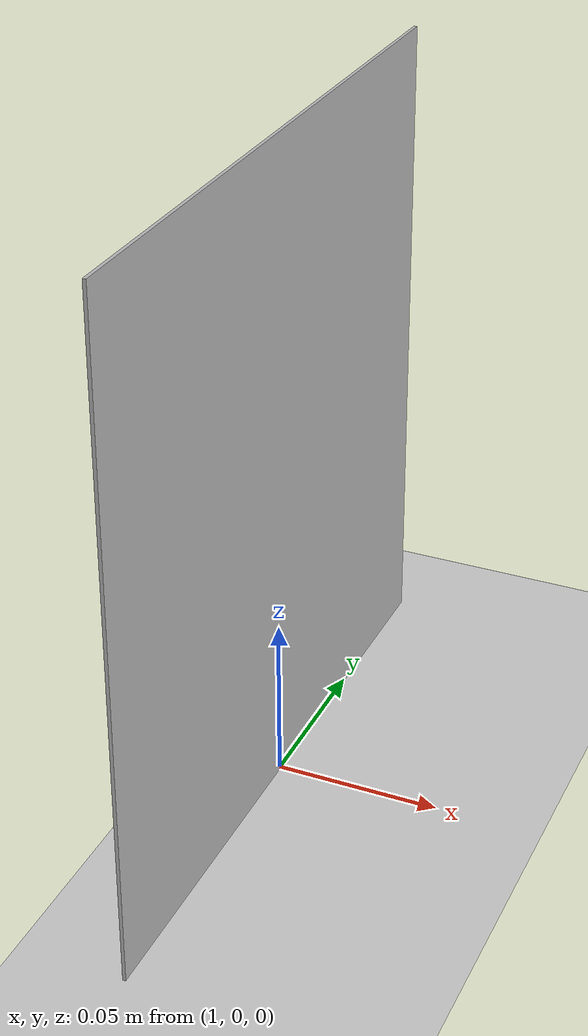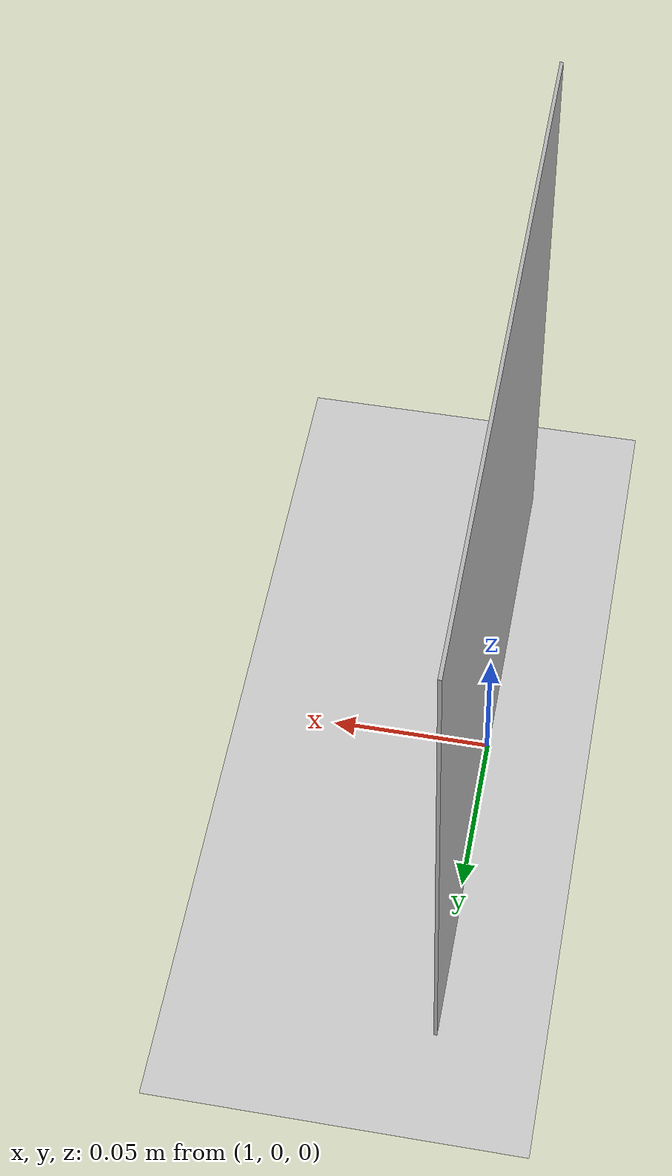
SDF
<?xml version="1.0"?>
<sdf version="1.9">
  <world name="aruco_demo">
    <include>
      <uri>https://fuel.gazebosim.org/1.0/OpenRobotics/models/Sun</uri>
    </include>
    <include>
      <uri>https://fuel.gazebosim.org/1.0/OpenRobotics/models/Ground Plane</uri>
    </include>

    <include>
      <uri>model://aruco_marker</uri>
      <name>aruco_marker_0</name>
      <pose>1.0 0.0 0.1 0 1.5708 0</pose>
    </include>
  </world>
</sdf>

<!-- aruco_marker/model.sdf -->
<sdf version="1.9">
  <model name="aruco_marker">
    <static>true</static>
    <link name="marker_link">
      <collision name="marker_collision">
        <geometry>
          <box>
            <size>0.2 0.2 0.001</size>
          </box>
        </geometry>
      </collision>
      <visual name="marker_visual">
        <geometry>
          <box>
            <size>0.2 0.2 0.001</size>
          </box>
        </geometry>
        <material>
          <pbr>
            <metal>
              <roughness>1.0</roughness>
              <metalness>0.0</metalness>
              <albedo_map>model://aruco_marker/materials/textures/aruco_4x4_00.png</albedo_map>
            </metal>
          </pbr>
        </material>
      </visual>
    </link>
  </model>
</sdf>
